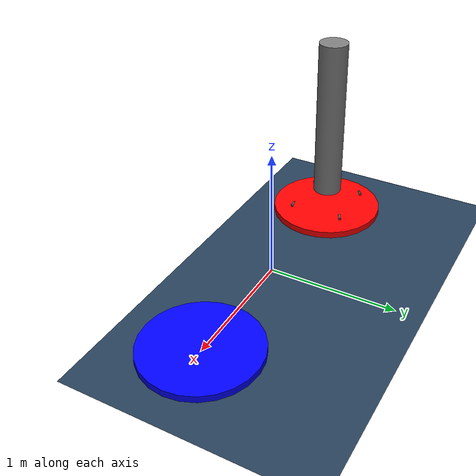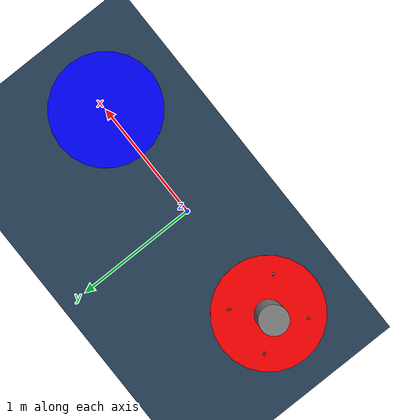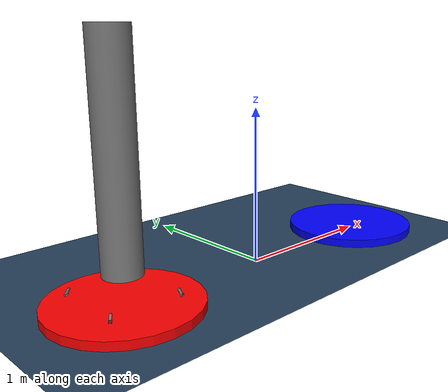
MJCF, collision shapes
<mujoco model="VTOL SCENE">
  <include file="vtol.xml"/>

  <statistic center="0 0 0.1" extent="0.2" meansize=".05"/>

  <visual>
    <headlight diffuse="0.6 0.6 0.6" ambient="0.3 0.3 0.3" specular="0 0 0"/>
    <rgba haze="0.15 0.25 0.35 1"/>
    <global azimuth="-20" elevation="-20" ellipsoidinertia="true"/>
  </visual>

  <asset>
    <texture type="skybox" builtin="gradient" rgb1="0.3 0.5 0.7" rgb2="0 0 0" width="512" height="3072"/>
    <texture type="2d" name="groundplane" builtin="checker" mark="edge" rgb1="0.2 0.3 0.4" rgb2="0.1 0.2 0.3"
      markrgb="0.8 0.8 0.8" width="300" height="300"/>
    <material name="groundplane" texture="groundplane" texuniform="true" texrepeat="5 5" reflectance="0.2"/>
    <material name="takeoff" rgba="1.0 0.0 0.0 0.3"/>
    <material name="land" rgba="0.0 0.0 1.0 0.3"/>
  </asset>

  <worldbody>
    <light pos="0 0 1.5" dir="0 0 -1" directional="true"/>
    <geom name="floor" size="0 0 0.05" type="plane" material="groundplane"/>
    <geom name="takeoff-base" material="takeoff" size="0.45 0.05" type="cylinder" pos="-1.0 0 0"/>
    <geom name="land-base" material="land" size="0.45 0.05" type="cylinder" pos="1.0 0 0"/>
  </worldbody>

</mujoco>

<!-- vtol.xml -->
<mujoco model="VTOL">
  <option integrator="RK4" density="1.225" viscosity="1.8e-5"/>
  <compiler inertiafromgeom="false" meshdir="assets" autolimits="true"/>

  <default>
    <default class="VTOL">
      <default class="visual">
        <geom group="2" type="mesh" contype="0" conaffinity="0"/>
      </default>
      <default class="collision">
        <geom group="3" type="mesh"/>
      </default>
      <site group="5"/>
    </default>
  </default>

  <asset>
    <material name="fuel" rgba="0.859375 0.6325 0.27451 1"/>
    <material name="oxy_blue1" rgba="0.2773 0.625 0.8203 1"/>
    <material name="oxy_blue2" rgba="0.1133 0.3555 0.8359 1"/>
    <material name="bar" rgba="0 0 0 1"/>
    <material name="legs" rgba="0.8984 0.8984 0.8984 1"/>
    <material name="body" rgba="0.6602 0.6875 0.6875 1"/>
    <material name="body_seg" rgba="0.914 0.914 0.914 1"/>
    <material name="connection" rgba="0.40625 0.40625 0.40625 1"/>
    <material name="engine" rgba="0.40625 0.40625 0.40625 1"/>
    <material name="engine_base" rgba="0.6445 0.6445 0.9336 1"/>

    <mesh file="fuel.stl"/>
    <mesh file="oxy.stl"/>
    <mesh file="legs.stl"/>
    <mesh file="legs_connection.stl"/>
    <mesh file="engine.stl"/>
    <mesh file="engine_base.stl"/>
    <mesh file="body1.stl"/>
    <mesh file="body2.stl"/>
    <mesh file="body_seg1.stl"/>
    <mesh file="body_seg2.stl"/>
    <mesh file="body_seg3.stl"/>
    <mesh file="main_bar.stl"/>
    <mesh file="legs_collision.stl"/>
    <mesh file="main_collision.stl"/>

  </asset>

  <worldbody>
    <body name="VTOL" pos="-1.0 0 0.3" euler="0 0 0" childclass="VTOL">
      <freejoint/>
      <inertial pos="0 0 0.55" mass="20.0" diaginertia="2.88279167 2.88279167 0.13225"/>
      <site name="imu"/>

      <geom mesh="fuel" material="fuel" class="visual" pos="0 0 0.22"/>
      <geom mesh="oxy" material="oxy_blue2" class="visual" pos="0 0 0.74"/>
      <geom mesh="legs" material="legs" class="visual" pos="0 0 0" euler="0 0 45"/>
      <geom mesh="legs_connection" material="connection" class="visual" pos="0 0 0" euler="0 0 45"/>
      <geom mesh="engine" material="body_seg" class="visual" pos="0 0 0.05" euler="180 0 0"/>
      <geom mesh="engine_base" material="engine_base" class="visual" pos="0 0 0.1" euler="180 0 45"/>
      <geom mesh="body1" material="body_seg" class="visual" pos="0 0 0.1"/>
      <geom mesh="body2" material="body_seg" class="visual" pos="0 0 1.01"/>
      <geom mesh="body_seg1" material="body_seg" class="visual" pos="0 0 0.2"/>
      <geom mesh="body_seg2" material="body_seg" class="visual" pos="0 0 0.72"/>
      <geom mesh="body_seg3" material="body_seg" class="visual" pos="0 0 1.01" euler="180 0 0"/>
      <geom mesh="main_bar" material="bar" class="visual" pos="0 0 0" euler="0 0 45"/>
      <geom mesh="legs_collision" class="collision" pos="0 0 0" euler="0 0 45"/>
      <geom mesh="main_collision" class="collision" pos="0 0 -0.1" euler="0 0 0"/>
      <site name="engine_site"/>
    </body>
  </worldbody>

  <actuator>
    <motor class="VTOL" ctrlrange="0 400" gear="0 0 1 0 0 0" site="engine_site" name="thrust_z"/>
    <motor class="VTOL" ctrlrange="-200 200" gear="1 0 0 0 0 0" site="engine_site" name="thrust_x"/>
    <motor class="VTOL" ctrlrange="-200 200" gear="0 1 0 0 0 0" site="engine_site" name="thrust_y"/>
    <motor class="VTOL" ctrlrange="-100 100" gear="0 0 0 0 0 1" site="engine_site" name="RCS"/>
  </actuator>

  <sensor>
    <gyro name="sensor_gyro" site="imu"/>
    <accelerometer name="sensor_linear_accel" site="imu"/>
    <framequat name="sensor_quat" objtype="site" objname="imu"/>
  </sensor>

</mujoco>
